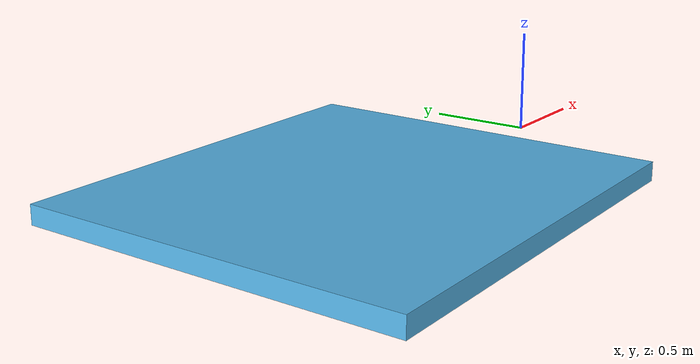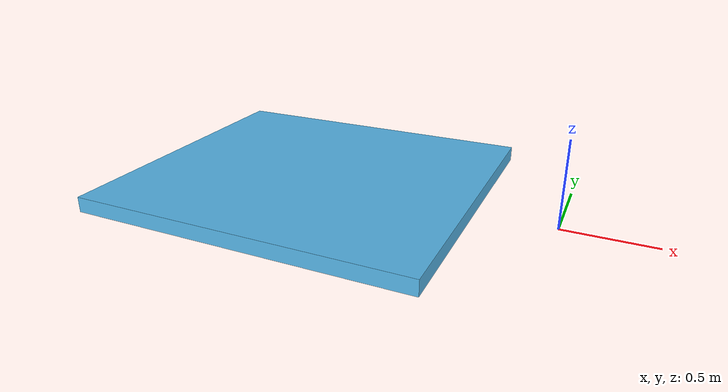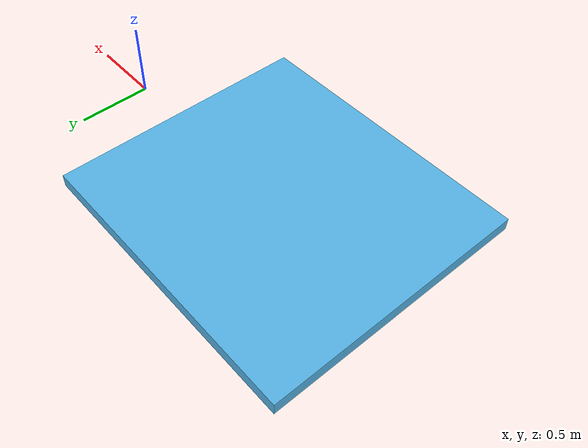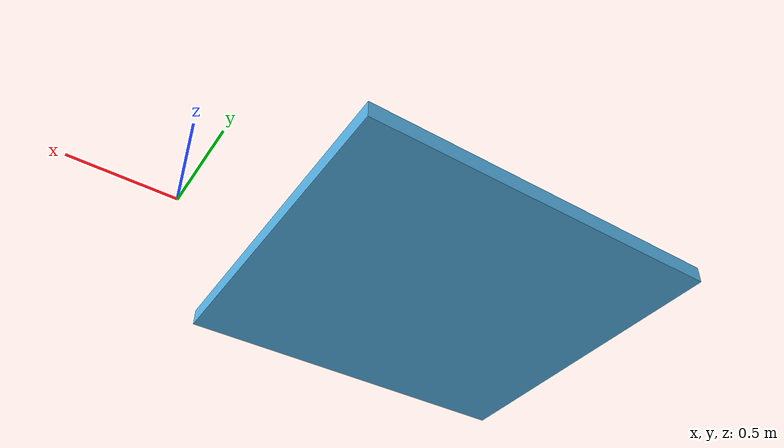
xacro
<?xml version="1.0"?>
<robot name="curb" xmlns:xacro="http://www.ros.org/wiki/xacro">
    <gazebo>
        <static>true</static>
    </gazebo>

    <xacro:property name="parent_name" value="world"/>
    <xacro:property name="step_height" default="0.090"/>
    <xacro:property name="step_depth" default="2"/>
    <xacro:property name="step_width" default="1.80"/>
    <xacro:property name="distance_to_origin" default="0.45"/>

    <link name="${parent_name}"/>

    <link name="curb">
        <collision>
          <geometry>
            <box size="${step_depth} ${step_width} ${step_height}" />
          </geometry>
        </collision>

        <visual name='visual'>
          <geometry>
            <box size="${step_depth} ${step_width} ${step_height}" />
          </geometry>
        </visual>
        <inertial>
            <origin xyz="0 0 0" rpy="0 0 0"/>
            <mass value="1"/>
            <inertia
                    ixx="1"
                    ixy="1"
                    ixz="1"
                    iyy="1"
                    iyz="1"
                    izz="1" />
        </inertial>
    </link>

    <joint name="joint_0" type="fixed">
        <parent link="${parent_name}"/>
        <child link="curb"/>
        <origin xyz="${-distance_to_origin - step_depth / 2} 0 ${step_height / 2}" rpy="0 0 0"/>
    </joint>
</robot>
